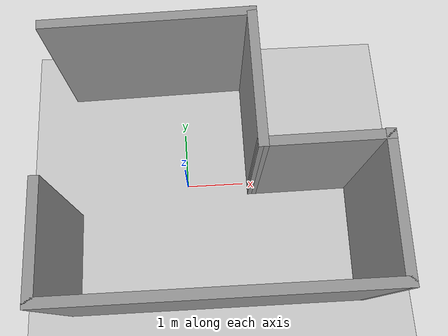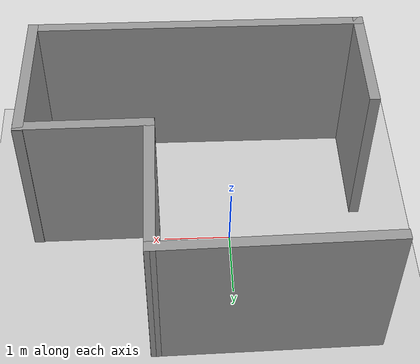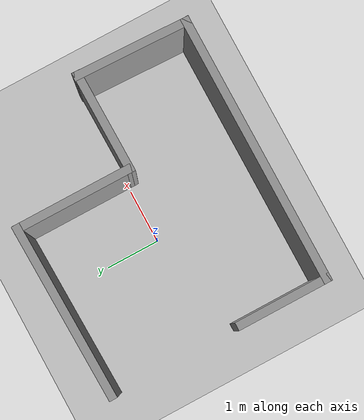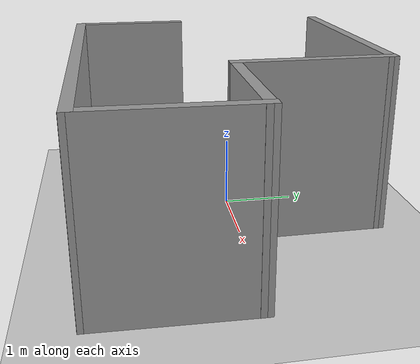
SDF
<sdf version="1.6">
 <world name="default">
  <model name="ground_plane">
   <static>1</static>
   <link name="link">
    <collision name="collision">
     <geometry><plane><normal>0 0 1</normal><size>100 100</size></plane></geometry>
     <surface><friction><ode><mu>100</mu><mu2>50</mu2></ode></friction></surface>
    </collision>
    <visual name="visual">
     <cast_shadows>0</cast_shadows>
     <geometry><plane><normal>0 0 1</normal><size>100 100</size></plane></geometry>
     <material>
      <script><uri>file://media/materials/scripts/gazebo.material</uri><name>Gazebo/Grey</name></script>
     </material>
    </visual>
   </link>
  </model>
  <light name="sun" type="directional">
   <cast_shadows>0</cast_shadows>
   <pose>0 0 10 0 -0 0</pose>
   <diffuse>0.8 0.8 0.8 1</diffuse>
   <specular>0.1 0.1 0.1 1</specular>
   <attenuation>
    <range>1000</range>
    <constant>0.9</constant>
    <linear>0.01</linear>
    <quadratic>0.001</quadratic>
   </attenuation>
   <direction>-0.5 0.5 -1</direction>
  </light>
  <gravity>0 0 -9.8</gravity>
  <magnetic_field>6e-06 2.3e-05 -4.2e-05</magnetic_field>
  <atmosphere type="adiabatic"/>
  <physics name="default_physics" default="0" type="ode">
   <max_step_size>0.001</max_step_size>
   <real_time_factor>1</real_time_factor>
   <real_time_update_rate>1000</real_time_update_rate>
  </physics>
  <scene><ambient>0.4 0.4 0.4 1</ambient><background>0.7 0.7 0.7 1</background><shadows>0</shadows></scene>
  <spherical_coordinates>
   <surface_model>EARTH_WGS84</surface_model>
   <latitude_deg>0</latitude_deg>
   <longitude_deg>0</longitude_deg>
   <elevation>0</elevation>
   <heading_deg>0</heading_deg>
  </spherical_coordinates>
  <model name="test_building">
   <pose>0.466493 -0.06366 0 0 -0 0</pose>
   <link name="Wall_0">
    <collision name="Wall_0_Collision">
     <geometry><box><size>3.29433 0.15 2.5</size></box></geometry>
     <pose>0 0 1.25 0 -0 0</pose>
    </collision>
    <visual name="Wall_0_Visual">
     <pose>0 0 1.25 0 -0 0</pose>
     <geometry><box><size>3.29433 0.15 2.5</size></box></geometry>
     <material>
      <script><uri>file://media/materials/scripts/gazebo.material</uri><name>Gazebo/Grey</name></script>
      <ambient>1 1 1 1</ambient>
     </material>
    </visual>
    <pose>-0.888493 2.01025 0 0 -0 0.022759</pose>
   </link>
   <link name="Wall_1">
    <collision name="Wall_1_Collision">
     <geometry><box><size>2.25 0.15 2.5</size></box></geometry>
     <pose>0 0 1.25 0 -0 0</pose>
    </collision>
    <visual name="Wall_1_Visual">
     <pose>0 0 1.25 0 -0 0</pose>
     <geometry><box><size>2.25 0.15 2.5</size></box></geometry>
     <material>
      <script><uri>file://media/materials/scripts/gazebo.material</uri><name>Gazebo/Grey</name></script>
      <ambient>1 1 1 1</ambient>
     </material>
    </visual>
    <pose>0.683267 0.996031 0 0 0 -1.5708</pose>
   </link>
   <link name="Wall_2">
    <collision name="Wall_2_Collision">
     <geometry><box><size>1.92658 0.15 2.5</size></box></geometry>
     <pose>0 0 1.25 0 -0 0</pose>
    </collision>
    <visual name="Wall_2_Visual">
     <pose>0 0 1.25 0 -0 0</pose>
     <geometry><box><size>1.92658 0.15 2.5</size></box></geometry>
     <material>
      <script><uri>file://media/materials/scripts/gazebo.material</uri><name>Gazebo/Grey</name></script>
      <ambient>1 1 1 1</ambient>
     </material>
    </visual>
    <pose>1.57151 -0.044747 0 0 -0 0.010382</pose>
   </link>
   <link name="Wall_3">
    <collision name="Wall_3_Collision">
     <geometry><box><size>2.17089 0.15 2.5</size></box></geometry>
     <pose>0 0 1.25 0 -0 0</pose>
    </collision>
    <visual name="Wall_3_Visual">
     <pose>0 0 1.25 0 -0 0</pose>
     <geometry><box><size>2.17089 0.15 2.5</size></box></geometry>
     <material>
      <script><uri>file://media/materials/scripts/gazebo.material</uri><name>Gazebo/Grey</name></script>
      <ambient>1 1 1 1</ambient>
     </material>
    </visual>
    <pose>2.42975 -1.03553 0 0 0 -1.60049</pose>
   </link>
   <link name="Wall_4">
    <collision name="Wall_4_Collision">
     <geometry><box><size>5 0.15 2.5</size></box></geometry>
     <pose>0 0 1.25 0 -0 0</pose>
    </collision>
    <visual name="Wall_4_Visual">
     <pose>0 0 1.25 0 -0 0</pose>
     <geometry><box><size>5 0.15 2.5</size></box></geometry>
     <material>
      <script><uri>file://media/materials/scripts/gazebo.material</uri><name>Gazebo/Grey</name></script>
      <ambient>1 1 1 1</ambient>
     </material>
    </visual>
    <pose>-0.025253 -2.04553 0 0 -0 3.14159</pose>
   </link>
   <link name="Wall_5">
    <collision name="Wall_5_Collision">
     <geometry><box><size>1.75 0.15 2.5</size></box></geometry>
     <pose>0 0 1.25 0 -0 0</pose>
    </collision>
    <visual name="Wall_5_Visual">
     <pose>0 0 1.25 0 -0 0</pose>
     <geometry><box><size>1.75 0.15 2.5</size></box></geometry>
     <material>
      <script><uri>file://media/materials/scripts/gazebo.material</uri><name>Gazebo/Grey</name></script>
      <ambient>1 1 1 1</ambient>
     </material>
    </visual>
    <pose>-2.45025 -1.24552 0 0 -0 1.5708</pose>
   </link>
   <static>1</static>
  </model>
 </world>
</sdf>
